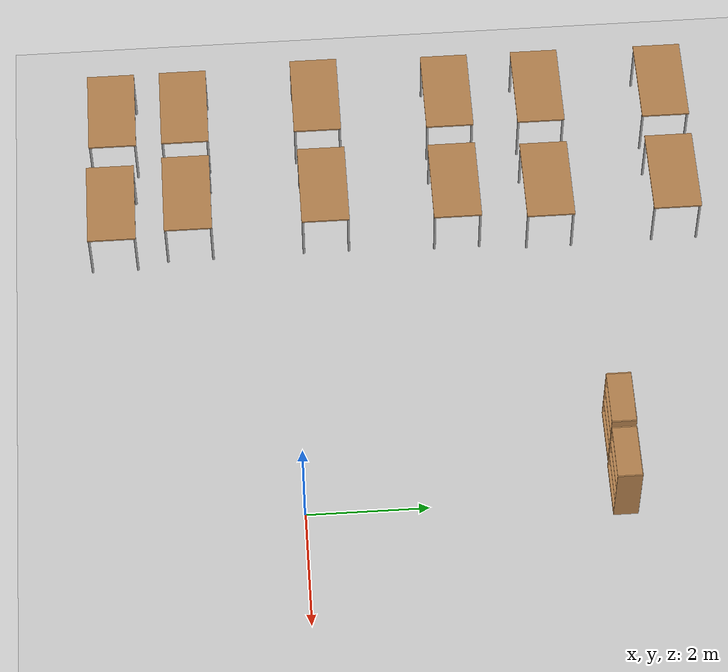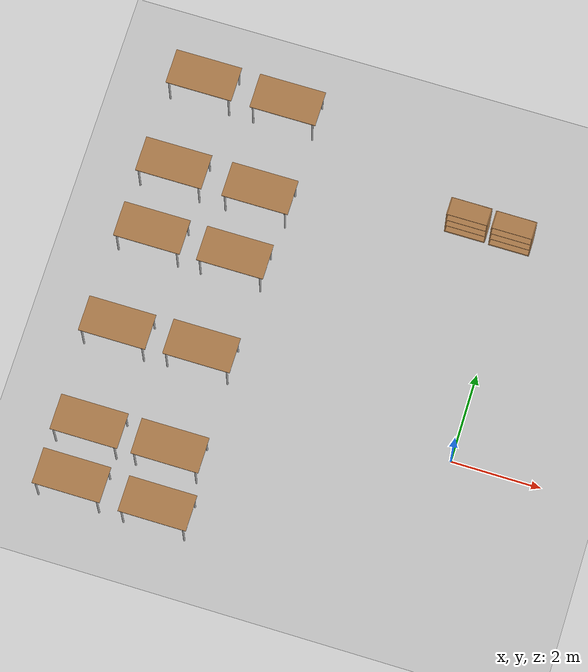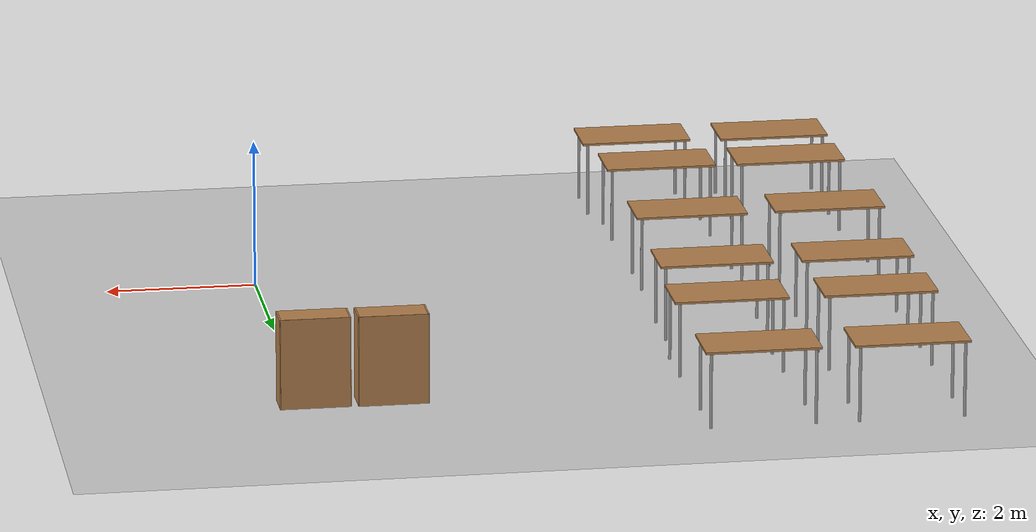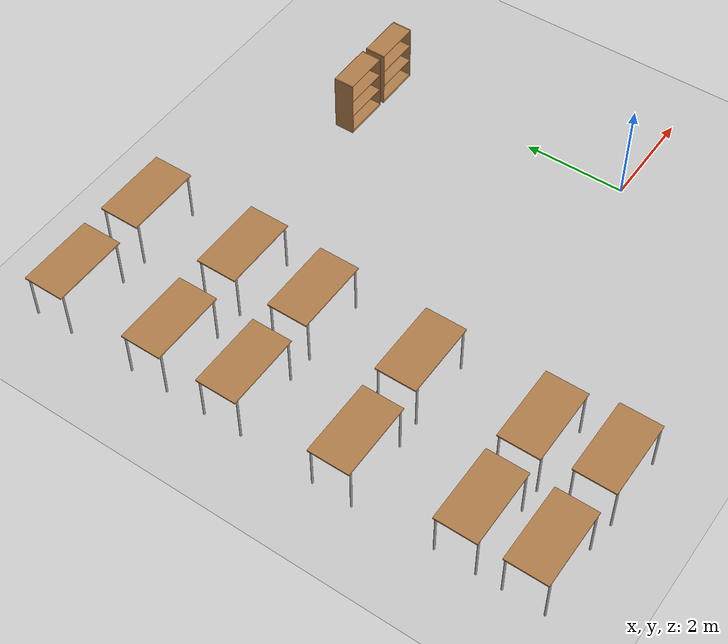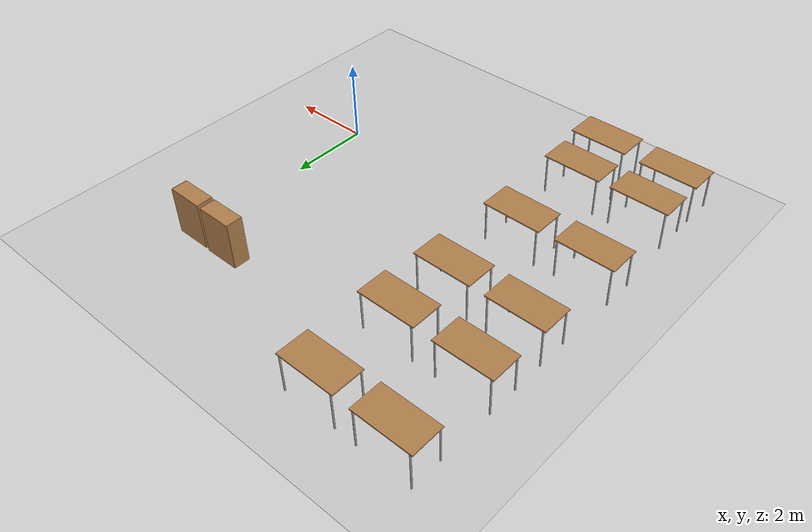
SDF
<sdf version="1.6">
 <world name="default">
  <model name="ground_plane">
   <static>1</static>
   <link name="link">
    <collision name="collision">
     <geometry><plane><normal>0 0 1</normal><size>100 100</size></plane></geometry>
     <surface>
      <contact><collide_bitmask>65535</collide_bitmask></contact>
      <friction><ode><mu>100</mu><mu2>50</mu2></ode></friction>
     </surface>
    </collision>
    <visual name="visual">
     <cast_shadows>0</cast_shadows>
     <geometry><plane><normal>0 0 1</normal><size>100 100</size></plane></geometry>
     <material>
      <script><uri>file://media/materials/scripts/gazebo.material</uri><name>Gazebo/Grey</name></script>
     </material>
    </visual>
   </link>
  </model>
  <model name="bookshelf">
   <static>1</static>
   <link name="link">
    <inertial><mass>1</mass></inertial>
    <collision name="back">
     <pose>0 0.005 0.6 0 -0 0</pose>
     <geometry><box><size>0.9 0.01 1.2</size></box></geometry>
    </collision>
    <visual name="visual1">
     <pose>0 0.005 0.6 0 -0 0</pose>
     <geometry><box><size>0.9 0.01 1.2</size></box></geometry>
     <material>
      <script><uri>file://media/materials/scripts/gazebo.material</uri><name>Gazebo/Wood</name></script>
     </material>
    </visual>
    <collision name="left_side">
     <pose>0.45 -0.195 0.6 0 -0 0</pose>
     <geometry><box><size>0.02 0.4 1.2</size></box></geometry>
    </collision>
    <visual name="visual2">
     <pose>0.45 -0.195 0.6 0 -0 0</pose>
     <geometry><box><size>0.02 0.4 1.2</size></box></geometry>
     <material>
      <script><uri>file://media/materials/scripts/gazebo.material</uri><name>Gazebo/Wood</name></script>
     </material>
    </visual>
    <collision name="right_side">
     <pose>-0.45 -0.195 0.6 0 -0 0</pose>
     <geometry><box><size>0.02 0.4 1.2</size></box></geometry>
    </collision>
    <visual name="visual3">
     <pose>-0.45 -0.195 0.6 0 -0 0</pose>
     <geometry><box><size>0.02 0.4 1.2</size></box></geometry>
     <material>
      <script><uri>file://media/materials/scripts/gazebo.material</uri><name>Gazebo/Wood</name></script>
     </material>
    </visual>
    <collision name="bottom">
     <pose>0 -0.195 0.03 0 -0 0</pose>
     <geometry><box><size>0.88 0.4 0.06</size></box></geometry>
    </collision>
    <visual name="visual4">
     <pose>0 -0.195 0.03 0 -0 0</pose>
     <geometry><box><size>0.88 0.4 0.06</size></box></geometry>
     <material>
      <script><uri>file://media/materials/scripts/gazebo.material</uri><name>Gazebo/Wood</name></script>
     </material>
    </visual>
    <collision name="top">
     <pose>0 -0.195 1.19 0 -0 0</pose>
     <geometry><box><size>0.88 0.4 0.02</size></box></geometry>
    </collision>
    <visual name="visual5">
     <pose>0 -0.195 1.19 0 -0 0</pose>
     <geometry><box><size>0.88 0.4 0.02</size></box></geometry>
     <material>
      <script><uri>file://media/materials/scripts/gazebo.material</uri><name>Gazebo/Wood</name></script>
     </material>
    </visual>
    <collision name="low_shelf">
     <pose>0 -0.195 0.43 0 -0 0</pose>
     <geometry><box><size>0.88 0.4 0.02</size></box></geometry>
    </collision>
    <visual name="visual6">
     <pose>0 -0.195 0.43 0 -0 0</pose>
     <geometry><box><size>0.88 0.4 0.02</size></box></geometry>
     <material>
      <script><uri>file://media/materials/scripts/gazebo.material</uri><name>Gazebo/Wood</name></script>
     </material>
    </visual>
    <collision name="high_shelf">
     <pose>0 -0.195 0.8 0 -0 0</pose>
     <geometry><box><size>0.88 0.4 0.02</size></box></geometry>
    </collision>
    <visual name="visual7">
     <pose>0 -0.195 0.8 0 -0 0</pose>
     <geometry><box><size>0.88 0.4 0.02</size></box></geometry>
     <material>
      <script><uri>file://media/materials/scripts/gazebo.material</uri><name>Gazebo/Wood</name></script>
     </material>
    </visual>
   </link>
   <pose>-1.13724 5.33278 0 0 -0 0</pose>
  </model>
  <model name="bookshelf_1">
   <static>1</static>
   <link name="link">
    <inertial><mass>1</mass></inertial>
    <collision name="back">
     <pose>0 0.005 0.6 0 -0 0</pose>
     <geometry><box><size>0.9 0.01 1.2</size></box></geometry>
    </collision>
    <visual name="visual1">
     <pose>0 0.005 0.6 0 -0 0</pose>
     <geometry><box><size>0.9 0.01 1.2</size></box></geometry>
     <material>
      <script><uri>file://media/materials/scripts/gazebo.material</uri><name>Gazebo/Wood</name></script>
     </material>
    </visual>
    <collision name="left_side">
     <pose>0.45 -0.195 0.6 0 -0 0</pose>
     <geometry><box><size>0.02 0.4 1.2</size></box></geometry>
    </collision>
    <visual name="visual2">
     <pose>0.45 -0.195 0.6 0 -0 0</pose>
     <geometry><box><size>0.02 0.4 1.2</size></box></geometry>
     <material>
      <script><uri>file://media/materials/scripts/gazebo.material</uri><name>Gazebo/Wood</name></script>
     </material>
    </visual>
    <collision name="right_side">
     <pose>-0.45 -0.195 0.6 0 -0 0</pose>
     <geometry><box><size>0.02 0.4 1.2</size></box></geometry>
    </collision>
    <visual name="visual3">
     <pose>-0.45 -0.195 0.6 0 -0 0</pose>
     <geometry><box><size>0.02 0.4 1.2</size></box></geometry>
     <material>
      <script><uri>file://media/materials/scripts/gazebo.material</uri><name>Gazebo/Wood</name></script>
     </material>
    </visual>
    <collision name="bottom">
     <pose>0 -0.195 0.03 0 -0 0</pose>
     <geometry><box><size>0.88 0.4 0.06</size></box></geometry>
    </collision>
    <visual name="visual4">
     <pose>0 -0.195 0.03 0 -0 0</pose>
     <geometry><box><size>0.88 0.4 0.06</size></box></geometry>
     <material>
      <script><uri>file://media/materials/scripts/gazebo.material</uri><name>Gazebo/Wood</name></script>
     </material>
    </visual>
    <collision name="top">
     <pose>0 -0.195 1.19 0 -0 0</pose>
     <geometry><box><size>0.88 0.4 0.02</size></box></geometry>
    </collision>
    <visual name="visual5">
     <pose>0 -0.195 1.19 0 -0 0</pose>
     <geometry><box><size>0.88 0.4 0.02</size></box></geometry>
     <material>
      <script><uri>file://media/materials/scripts/gazebo.material</uri><name>Gazebo/Wood</name></script>
     </material>
    </visual>
    <collision name="low_shelf">
     <pose>0 -0.195 0.43 0 -0 0</pose>
     <geometry><box><size>0.88 0.4 0.02</size></box></geometry>
    </collision>
    <visual name="visual6">
     <pose>0 -0.195 0.43 0 -0 0</pose>
     <geometry><box><size>0.88 0.4 0.02</size></box></geometry>
     <material>
      <script><uri>file://media/materials/scripts/gazebo.material</uri><name>Gazebo/Wood</name></script>
     </material>
    </visual>
    <collision name="high_shelf">
     <pose>0 -0.195 0.8 0 -0 0</pose>
     <geometry><box><size>0.88 0.4 0.02</size></box></geometry>
    </collision>
    <visual name="visual7">
     <pose>0 -0.195 0.8 0 -0 0</pose>
     <geometry><box><size>0.88 0.4 0.02</size></box></geometry>
     <material>
      <script><uri>file://media/materials/scripts/gazebo.material</uri><name>Gazebo/Wood</name></script>
     </material>
    </visual>
   </link>
   <pose>-0.129759 5.31814 0 0 -0 0</pose>
  </model>
  <model name="table">
   <static>1</static>
   <link name="link">
    <collision name="surface">
     <pose>0 0 1 0 -0 0</pose>
     <geometry><box><size>1.5 0.8 0.03</size></box></geometry>
     <surface><friction><ode><mu>0.6</mu><mu2>0.6</mu2></ode></friction></surface>
    </collision>
    <visual name="visual1">
     <pose>0 0 1 0 -0 0</pose>
     <geometry><box><size>1.5 0.8 0.03</size></box></geometry>
     <material>
      <script><uri>file://media/materials/scripts/gazebo.material</uri><name>Gazebo/Wood</name></script>
     </material>
    </visual>
    <collision name="front_left_leg">
     <pose>0.68 0.38 0.5 0 -0 0</pose>
     <geometry><cylinder><radius>0.02</radius><length>1</length></cylinder></geometry>
    </collision>
    <visual name="front_left_leg">
     <pose>0.68 0.38 0.5 0 -0 0</pose>
     <geometry><cylinder><radius>0.02</radius><length>1</length></cylinder></geometry>
     <material>
      <script><uri>file://media/materials/scripts/gazebo.material</uri><name>Gazebo/Grey</name></script>
     </material>
    </visual>
    <collision name="front_right_leg">
     <pose>0.68 -0.38 0.5 0 -0 0</pose>
     <geometry><cylinder><radius>0.02</radius><length>1</length></cylinder></geometry>
    </collision>
    <visual name="front_right_leg">
     <pose>0.68 -0.38 0.5 0 -0 0</pose>
     <geometry><cylinder><radius>0.02</radius><length>1</length></cylinder></geometry>
     <material>
      <script><uri>file://media/materials/scripts/gazebo.material</uri><name>Gazebo/Grey</name></script>
     </material>
    </visual>
    <collision name="back_right_leg">
     <pose>-0.68 -0.38 0.5 0 -0 0</pose>
     <geometry><cylinder><radius>0.02</radius><length>1</length></cylinder></geometry>
    </collision>
    <visual name="back_right_leg">
     <pose>-0.68 -0.38 0.5 0 -0 0</pose>
     <geometry><cylinder><radius>0.02</radius><length>1</length></cylinder></geometry>
     <material>
      <script><uri>file://media/materials/scripts/gazebo.material</uri><name>Gazebo/Grey</name></script>
     </material>
    </visual>
    <collision name="back_left_leg">
     <pose>-0.68 0.38 0.5 0 -0 0</pose>
     <geometry><cylinder><radius>0.02</radius><length>1</length></cylinder></geometry>
    </collision>
    <visual name="back_left_leg">
     <pose>-0.68 0.38 0.5 0 -0 0</pose>
     <geometry><cylinder><radius>0.02</radius><length>1</length></cylinder></geometry>
     <material>
      <script><uri>file://media/materials/scripts/gazebo.material</uri><name>Gazebo/Grey</name></script>
     </material>
    </visual>
   </link>
   <pose>-7.57494 6.51884 0 0 -0 0</pose>
  </model>
  <model name="table_0">
   <static>1</static>
   <link name="link">
    <collision name="surface">
     <pose>0 0 1 0 -0 0</pose>
     <geometry><box><size>1.5 0.8 0.03</size></box></geometry>
     <surface><friction><ode><mu>0.6</mu><mu2>0.6</mu2></ode></friction></surface>
    </collision>
    <visual name="visual1">
     <pose>0 0 1 0 -0 0</pose>
     <geometry><box><size>1.5 0.8 0.03</size></box></geometry>
     <material>
      <script><uri>file://media/materials/scripts/gazebo.material</uri><name>Gazebo/Wood</name></script>
     </material>
    </visual>
    <collision name="front_left_leg">
     <pose>0.68 0.38 0.5 0 -0 0</pose>
     <geometry><cylinder><radius>0.02</radius><length>1</length></cylinder></geometry>
    </collision>
    <visual name="front_left_leg">
     <pose>0.68 0.38 0.5 0 -0 0</pose>
     <geometry><cylinder><radius>0.02</radius><length>1</length></cylinder></geometry>
     <material>
      <script><uri>file://media/materials/scripts/gazebo.material</uri><name>Gazebo/Grey</name></script>
     </material>
    </visual>
    <collision name="front_right_leg">
     <pose>0.68 -0.38 0.5 0 -0 0</pose>
     <geometry><cylinder><radius>0.02</radius><length>1</length></cylinder></geometry>
    </collision>
    <visual name="front_right_leg">
     <pose>0.68 -0.38 0.5 0 -0 0</pose>
     <geometry><cylinder><radius>0.02</radius><length>1</length></cylinder></geometry>
     <material>
      <script><uri>file://media/materials/scripts/gazebo.material</uri><name>Gazebo/Grey</name></script>
     </material>
    </visual>
    <collision name="back_right_leg">
     <pose>-0.68 -0.38 0.5 0 -0 0</pose>
     <geometry><cylinder><radius>0.02</radius><length>1</length></cylinder></geometry>
    </collision>
    <visual name="back_right_leg">
     <pose>-0.68 -0.38 0.5 0 -0 0</pose>
     <geometry><cylinder><radius>0.02</radius><length>1</length></cylinder></geometry>
     <material>
      <script><uri>file://media/materials/scripts/gazebo.material</uri><name>Gazebo/Grey</name></script>
     </material>
    </visual>
    <collision name="back_left_leg">
     <pose>-0.68 0.38 0.5 0 -0 0</pose>
     <geometry><cylinder><radius>0.02</radius><length>1</length></cylinder></geometry>
    </collision>
    <visual name="back_left_leg">
     <pose>-0.68 0.38 0.5 0 -0 0</pose>
     <geometry><cylinder><radius>0.02</radius><length>1</length></cylinder></geometry>
     <material>
      <script><uri>file://media/materials/scripts/gazebo.material</uri><name>Gazebo/Grey</name></script>
     </material>
    </visual>
   </link>
   <pose>-5.65387 6.50866 0 0 -0 0</pose>
  </model>
  <model name="table_1">
   <static>1</static>
   <link name="link">
    <collision name="surface">
     <pose>0 0 1 0 -0 0</pose>
     <geometry><box><size>1.5 0.8 0.03</size></box></geometry>
     <surface><friction><ode><mu>0.6</mu><mu2>0.6</mu2></ode></friction></surface>
    </collision>
    <visual name="visual1">
     <pose>0 0 1 0 -0 0</pose>
     <geometry><box><size>1.5 0.8 0.03</size></box></geometry>
     <material>
      <script><uri>file://media/materials/scripts/gazebo.material</uri><name>Gazebo/Wood</name></script>
     </material>
    </visual>
    <collision name="front_left_leg">
     <pose>0.68 0.38 0.5 0 -0 0</pose>
     <geometry><cylinder><radius>0.02</radius><length>1</length></cylinder></geometry>
    </collision>
    <visual name="front_left_leg">
     <pose>0.68 0.38 0.5 0 -0 0</pose>
     <geometry><cylinder><radius>0.02</radius><length>1</length></cylinder></geometry>
     <material>
      <script><uri>file://media/materials/scripts/gazebo.material</uri><name>Gazebo/Grey</name></script>
     </material>
    </visual>
    <collision name="front_right_leg">
     <pose>0.68 -0.38 0.5 0 -0 0</pose>
     <geometry><cylinder><radius>0.02</radius><length>1</length></cylinder></geometry>
    </collision>
    <visual name="front_right_leg">
     <pose>0.68 -0.38 0.5 0 -0 0</pose>
     <geometry><cylinder><radius>0.02</radius><length>1</length></cylinder></geometry>
     <material>
      <script><uri>file://media/materials/scripts/gazebo.material</uri><name>Gazebo/Grey</name></script>
     </material>
    </visual>
    <collision name="back_right_leg">
     <pose>-0.68 -0.38 0.5 0 -0 0</pose>
     <geometry><cylinder><radius>0.02</radius><length>1</length></cylinder></geometry>
    </collision>
    <visual name="back_right_leg">
     <pose>-0.68 -0.38 0.5 0 -0 0</pose>
     <geometry><cylinder><radius>0.02</radius><length>1</length></cylinder></geometry>
     <material>
      <script><uri>file://media/materials/scripts/gazebo.material</uri><name>Gazebo/Grey</name></script>
     </material>
    </visual>
    <collision name="back_left_leg">
     <pose>-0.68 0.38 0.5 0 -0 0</pose>
     <geometry><cylinder><radius>0.02</radius><length>1</length></cylinder></geometry>
    </collision>
    <visual name="back_left_leg">
     <pose>-0.68 0.38 0.5 0 -0 0</pose>
     <geometry><cylinder><radius>0.02</radius><length>1</length></cylinder></geometry>
     <material>
      <script><uri>file://media/materials/scripts/gazebo.material</uri><name>Gazebo/Grey</name></script>
     </material>
    </visual>
   </link>
   <pose>-7.59028 4.39341 0 0 -0 0</pose>
  </model>
  <model name="table_2">
   <static>1</static>
   <link name="link">
    <collision name="surface">
     <pose>0 0 1 0 -0 0</pose>
     <geometry><box><size>1.5 0.8 0.03</size></box></geometry>
     <surface><friction><ode><mu>0.6</mu><mu2>0.6</mu2></ode></friction></surface>
    </collision>
    <visual name="visual1">
     <pose>0 0 1 0 -0 0</pose>
     <geometry><box><size>1.5 0.8 0.03</size></box></geometry>
     <material>
      <script><uri>file://media/materials/scripts/gazebo.material</uri><name>Gazebo/Wood</name></script>
     </material>
    </visual>
    <collision name="front_left_leg">
     <pose>0.68 0.38 0.5 0 -0 0</pose>
     <geometry><cylinder><radius>0.02</radius><length>1</length></cylinder></geometry>
    </collision>
    <visual name="front_left_leg">
     <pose>0.68 0.38 0.5 0 -0 0</pose>
     <geometry><cylinder><radius>0.02</radius><length>1</length></cylinder></geometry>
     <material>
      <script><uri>file://media/materials/scripts/gazebo.material</uri><name>Gazebo/Grey</name></script>
     </material>
    </visual>
    <collision name="front_right_leg">
     <pose>0.68 -0.38 0.5 0 -0 0</pose>
     <geometry><cylinder><radius>0.02</radius><length>1</length></cylinder></geometry>
    </collision>
    <visual name="front_right_leg">
     <pose>0.68 -0.38 0.5 0 -0 0</pose>
     <geometry><cylinder><radius>0.02</radius><length>1</length></cylinder></geometry>
     <material>
      <script><uri>file://media/materials/scripts/gazebo.material</uri><name>Gazebo/Grey</name></script>
     </material>
    </visual>
    <collision name="back_right_leg">
     <pose>-0.68 -0.38 0.5 0 -0 0</pose>
     <geometry><cylinder><radius>0.02</radius><length>1</length></cylinder></geometry>
    </collision>
    <visual name="back_right_leg">
     <pose>-0.68 -0.38 0.5 0 -0 0</pose>
     <geometry><cylinder><radius>0.02</radius><length>1</length></cylinder></geometry>
     <material>
      <script><uri>file://media/materials/scripts/gazebo.material</uri><name>Gazebo/Grey</name></script>
     </material>
    </visual>
    <collision name="back_left_leg">
     <pose>-0.68 0.38 0.5 0 -0 0</pose>
     <geometry><cylinder><radius>0.02</radius><length>1</length></cylinder></geometry>
    </collision>
    <visual name="back_left_leg">
     <pose>-0.68 0.38 0.5 0 -0 0</pose>
     <geometry><cylinder><radius>0.02</radius><length>1</length></cylinder></geometry>
     <material>
      <script><uri>file://media/materials/scripts/gazebo.material</uri><name>Gazebo/Grey</name></script>
     </material>
    </visual>
   </link>
   <pose>-5.62845 4.382 0 0 -0 0</pose>
  </model>
  <model name="table_3">
   <static>1</static>
   <link name="link">
    <collision name="surface">
     <pose>0 0 1 0 -0 0</pose>
     <geometry><box><size>1.5 0.8 0.03</size></box></geometry>
     <surface><friction><ode><mu>0.6</mu><mu2>0.6</mu2></ode></friction></surface>
    </collision>
    <visual name="visual1">
     <pose>0 0 1 0 -0 0</pose>
     <geometry><box><size>1.5 0.8 0.03</size></box></geometry>
     <material>
      <script><uri>file://media/materials/scripts/gazebo.material</uri><name>Gazebo/Wood</name></script>
     </material>
    </visual>
    <collision name="front_left_leg">
     <pose>0.68 0.38 0.5 0 -0 0</pose>
     <geometry><cylinder><radius>0.02</radius><length>1</length></cylinder></geometry>
    </collision>
    <visual name="front_left_leg">
     <pose>0.68 0.38 0.5 0 -0 0</pose>
     <geometry><cylinder><radius>0.02</radius><length>1</length></cylinder></geometry>
     <material>
      <script><uri>file://media/materials/scripts/gazebo.material</uri><name>Gazebo/Grey</name></script>
     </material>
    </visual>
    <collision name="front_right_leg">
     <pose>0.68 -0.38 0.5 0 -0 0</pose>
     <geometry><cylinder><radius>0.02</radius><length>1</length></cylinder></geometry>
    </collision>
    <visual name="front_right_leg">
     <pose>0.68 -0.38 0.5 0 -0 0</pose>
     <geometry><cylinder><radius>0.02</radius><length>1</length></cylinder></geometry>
     <material>
      <script><uri>file://media/materials/scripts/gazebo.material</uri><name>Gazebo/Grey</name></script>
     </material>
    </visual>
    <collision name="back_right_leg">
     <pose>-0.68 -0.38 0.5 0 -0 0</pose>
     <geometry><cylinder><radius>0.02</radius><length>1</length></cylinder></geometry>
    </collision>
    <visual name="back_right_leg">
     <pose>-0.68 -0.38 0.5 0 -0 0</pose>
     <geometry><cylinder><radius>0.02</radius><length>1</length></cylinder></geometry>
     <material>
      <script><uri>file://media/materials/scripts/gazebo.material</uri><name>Gazebo/Grey</name></script>
     </material>
    </visual>
    <collision name="back_left_leg">
     <pose>-0.68 0.38 0.5 0 -0 0</pose>
     <geometry><cylinder><radius>0.02</radius><length>1</length></cylinder></geometry>
    </collision>
    <visual name="back_left_leg">
     <pose>-0.68 0.38 0.5 0 -0 0</pose>
     <geometry><cylinder><radius>0.02</radius><length>1</length></cylinder></geometry>
     <material>
      <script><uri>file://media/materials/scripts/gazebo.material</uri><name>Gazebo/Grey</name></script>
     </material>
    </visual>
   </link>
   <pose>-7.59009 2.84002 0 0 -0 0</pose>
  </model>
  <model name="table_4">
   <static>1</static>
   <link name="link">
    <collision name="surface">
     <pose>0 0 1 0 -0 0</pose>
     <geometry><box><size>1.5 0.8 0.03</size></box></geometry>
     <surface><friction><ode><mu>0.6</mu><mu2>0.6</mu2></ode></friction></surface>
    </collision>
    <visual name="visual1">
     <pose>0 0 1 0 -0 0</pose>
     <geometry><box><size>1.5 0.8 0.03</size></box></geometry>
     <material>
      <script><uri>file://media/materials/scripts/gazebo.material</uri><name>Gazebo/Wood</name></script>
     </material>
    </visual>
    <collision name="front_left_leg">
     <pose>0.68 0.38 0.5 0 -0 0</pose>
     <geometry><cylinder><radius>0.02</radius><length>1</length></cylinder></geometry>
    </collision>
    <visual name="front_left_leg">
     <pose>0.68 0.38 0.5 0 -0 0</pose>
     <geometry><cylinder><radius>0.02</radius><length>1</length></cylinder></geometry>
     <material>
      <script><uri>file://media/materials/scripts/gazebo.material</uri><name>Gazebo/Grey</name></script>
     </material>
    </visual>
    <collision name="front_right_leg">
     <pose>0.68 -0.38 0.5 0 -0 0</pose>
     <geometry><cylinder><radius>0.02</radius><length>1</length></cylinder></geometry>
    </collision>
    <visual name="front_right_leg">
     <pose>0.68 -0.38 0.5 0 -0 0</pose>
     <geometry><cylinder><radius>0.02</radius><length>1</length></cylinder></geometry>
     <material>
      <script><uri>file://media/materials/scripts/gazebo.material</uri><name>Gazebo/Grey</name></script>
     </material>
    </visual>
    <collision name="back_right_leg">
     <pose>-0.68 -0.38 0.5 0 -0 0</pose>
     <geometry><cylinder><radius>0.02</radius><length>1</length></cylinder></geometry>
    </collision>
    <visual name="back_right_leg">
     <pose>-0.68 -0.38 0.5 0 -0 0</pose>
     <geometry><cylinder><radius>0.02</radius><length>1</length></cylinder></geometry>
     <material>
      <script><uri>file://media/materials/scripts/gazebo.material</uri><name>Gazebo/Grey</name></script>
     </material>
    </visual>
    <collision name="back_left_leg">
     <pose>-0.68 0.38 0.5 0 -0 0</pose>
     <geometry><cylinder><radius>0.02</radius><length>1</length></cylinder></geometry>
    </collision>
    <visual name="back_left_leg">
     <pose>-0.68 0.38 0.5 0 -0 0</pose>
     <geometry><cylinder><radius>0.02</radius><length>1</length></cylinder></geometry>
     <material>
      <script><uri>file://media/materials/scripts/gazebo.material</uri><name>Gazebo/Grey</name></script>
     </material>
    </visual>
   </link>
   <pose>-5.71003 2.83079 0 0 -0 0</pose>
  </model>
  <model name="table_5">
   <static>1</static>
   <link name="link">
    <collision name="surface">
     <pose>0 0 1 0 -0 0</pose>
     <geometry><box><size>1.5 0.8 0.03</size></box></geometry>
     <surface><friction><ode><mu>0.6</mu><mu2>0.6</mu2></ode></friction></surface>
    </collision>
    <visual name="visual1">
     <pose>0 0 1 0 -0 0</pose>
     <geometry><box><size>1.5 0.8 0.03</size></box></geometry>
     <material>
      <script><uri>file://media/materials/scripts/gazebo.material</uri><name>Gazebo/Wood</name></script>
     </material>
    </visual>
    <collision name="front_left_leg">
     <pose>0.68 0.38 0.5 0 -0 0</pose>
     <geometry><cylinder><radius>0.02</radius><length>1</length></cylinder></geometry>
    </collision>
    <visual name="front_left_leg">
     <pose>0.68 0.38 0.5 0 -0 0</pose>
     <geometry><cylinder><radius>0.02</radius><length>1</length></cylinder></geometry>
     <material>
      <script><uri>file://media/materials/scripts/gazebo.material</uri><name>Gazebo/Grey</name></script>
     </material>
    </visual>
    <collision name="front_right_leg">
     <pose>0.68 -0.38 0.5 0 -0 0</pose>
     <geometry><cylinder><radius>0.02</radius><length>1</length></cylinder></geometry>
    </collision>
    <visual name="front_right_leg">
     <pose>0.68 -0.38 0.5 0 -0 0</pose>
     <geometry><cylinder><radius>0.02</radius><length>1</length></cylinder></geometry>
     <material>
      <script><uri>file://media/materials/scripts/gazebo.material</uri><name>Gazebo/Grey</name></script>
     </material>
    </visual>
    <collision name="back_right_leg">
     <pose>-0.68 -0.38 0.5 0 -0 0</pose>
     <geometry><cylinder><radius>0.02</radius><length>1</length></cylinder></geometry>
    </collision>
    <visual name="back_right_leg">
     <pose>-0.68 -0.38 0.5 0 -0 0</pose>
     <geometry><cylinder><radius>0.02</radius><length>1</length></cylinder></geometry>
     <material>
      <script><uri>file://media/materials/scripts/gazebo.material</uri><name>Gazebo/Grey</name></script>
     </material>
    </visual>
    <collision name="back_left_leg">
     <pose>-0.68 0.38 0.5 0 -0 0</pose>
     <geometry><cylinder><radius>0.02</radius><length>1</length></cylinder></geometry>
    </collision>
    <visual name="back_left_leg">
     <pose>-0.68 0.38 0.5 0 -0 0</pose>
     <geometry><cylinder><radius>0.02</radius><length>1</length></cylinder></geometry>
     <material>
      <script><uri>file://media/materials/scripts/gazebo.material</uri><name>Gazebo/Grey</name></script>
     </material>
    </visual>
   </link>
   <pose>-7.64919 0.593495 0 0 -0 0</pose>
  </model>
  <model name="table_6">
   <static>1</static>
   <link name="link">
    <collision name="surface">
     <pose>0 0 1 0 -0 0</pose>
     <geometry><box><size>1.5 0.8 0.03</size></box></geometry>
     <surface><friction><ode><mu>0.6</mu><mu2>0.6</mu2></ode></friction></surface>
    </collision>
    <visual name="visual1">
     <pose>0 0 1 0 -0 0</pose>
     <geometry><box><size>1.5 0.8 0.03</size></box></geometry>
     <material>
      <script><uri>file://media/materials/scripts/gazebo.material</uri><name>Gazebo/Wood</name></script>
     </material>
    </visual>
    <collision name="front_left_leg">
     <pose>0.68 0.38 0.5 0 -0 0</pose>
     <geometry><cylinder><radius>0.02</radius><length>1</length></cylinder></geometry>
    </collision>
    <visual name="front_left_leg">
     <pose>0.68 0.38 0.5 0 -0 0</pose>
     <geometry><cylinder><radius>0.02</radius><length>1</length></cylinder></geometry>
     <material>
      <script><uri>file://media/materials/scripts/gazebo.material</uri><name>Gazebo/Grey</name></script>
     </material>
    </visual>
    <collision name="front_right_leg">
     <pose>0.68 -0.38 0.5 0 -0 0</pose>
     <geometry><cylinder><radius>0.02</radius><length>1</length></cylinder></geometry>
    </collision>
    <visual name="front_right_leg">
     <pose>0.68 -0.38 0.5 0 -0 0</pose>
     <geometry><cylinder><radius>0.02</radius><length>1</length></cylinder></geometry>
     <material>
      <script><uri>file://media/materials/scripts/gazebo.material</uri><name>Gazebo/Grey</name></script>
     </material>
    </visual>
    <collision name="back_right_leg">
     <pose>-0.68 -0.38 0.5 0 -0 0</pose>
     <geometry><cylinder><radius>0.02</radius><length>1</length></cylinder></geometry>
    </collision>
    <visual name="back_right_leg">
     <pose>-0.68 -0.38 0.5 0 -0 0</pose>
     <geometry><cylinder><radius>0.02</radius><length>1</length></cylinder></geometry>
     <material>
      <script><uri>file://media/materials/scripts/gazebo.material</uri><name>Gazebo/Grey</name></script>
     </material>
    </visual>
    <collision name="back_left_leg">
     <pose>-0.68 0.38 0.5 0 -0 0</pose>
     <geometry><cylinder><radius>0.02</radius><length>1</length></cylinder></geometry>
    </collision>
    <visual name="back_left_leg">
     <pose>-0.68 0.38 0.5 0 -0 0</pose>
     <geometry><cylinder><radius>0.02</radius><length>1</length></cylinder></geometry>
     <material>
      <script><uri>file://media/materials/scripts/gazebo.material</uri><name>Gazebo/Grey</name></script>
     </material>
    </visual>
   </link>
   <pose>-5.76818 0.625273 0 0 -0 0</pose>
  </model>
  <model name="table_7">
   <static>1</static>
   <link name="link">
    <collision name="surface">
     <pose>0 0 1 0 -0 0</pose>
     <geometry><box><size>1.5 0.8 0.03</size></box></geometry>
     <surface><friction><ode><mu>0.6</mu><mu2>0.6</mu2></ode></friction></surface>
    </collision>
    <visual name="visual1">
     <pose>0 0 1 0 -0 0</pose>
     <geometry><box><size>1.5 0.8 0.03</size></box></geometry>
     <material>
      <script><uri>file://media/materials/scripts/gazebo.material</uri><name>Gazebo/Wood</name></script>
     </material>
    </visual>
    <collision name="front_left_leg">
     <pose>0.68 0.38 0.5 0 -0 0</pose>
     <geometry><cylinder><radius>0.02</radius><length>1</length></cylinder></geometry>
    </collision>
    <visual name="front_left_leg">
     <pose>0.68 0.38 0.5 0 -0 0</pose>
     <geometry><cylinder><radius>0.02</radius><length>1</length></cylinder></geometry>
     <material>
      <script><uri>file://media/materials/scripts/gazebo.material</uri><name>Gazebo/Grey</name></script>
     </material>
    </visual>
    <collision name="front_right_leg">
     <pose>0.68 -0.38 0.5 0 -0 0</pose>
     <geometry><cylinder><radius>0.02</radius><length>1</length></cylinder></geometry>
    </collision>
    <visual name="front_right_leg">
     <pose>0.68 -0.38 0.5 0 -0 0</pose>
     <geometry><cylinder><radius>0.02</radius><length>1</length></cylinder></geometry>
     <material>
      <script><uri>file://media/materials/scripts/gazebo.material</uri><name>Gazebo/Grey</name></script>
     </material>
    </visual>
    <collision name="back_right_leg">
     <pose>-0.68 -0.38 0.5 0 -0 0</pose>
     <geometry><cylinder><radius>0.02</radius><length>1</length></cylinder></geometry>
    </collision>
    <visual name="back_right_leg">
     <pose>-0.68 -0.38 0.5 0 -0 0</pose>
     <geometry><cylinder><radius>0.02</radius><length>1</length></cylinder></geometry>
     <material>
      <script><uri>file://media/materials/scripts/gazebo.material</uri><name>Gazebo/Grey</name></script>
     </material>
    </visual>
    <collision name="back_left_leg">
     <pose>-0.68 0.38 0.5 0 -0 0</pose>
     <geometry><cylinder><radius>0.02</radius><length>1</length></cylinder></geometry>
    </collision>
    <visual name="back_left_leg">
     <pose>-0.68 0.38 0.5 0 -0 0</pose>
     <geometry><cylinder><radius>0.02</radius><length>1</length></cylinder></geometry>
     <material>
      <script><uri>file://media/materials/scripts/gazebo.material</uri><name>Gazebo/Grey</name></script>
     </material>
    </visual>
   </link>
   <pose>-7.5452 -1.65694 0 0 -0 0</pose>
  </model>
  <model name="table_8">
   <static>1</static>
   <link name="link">
    <collision name="surface">
     <pose>0 0 1 0 -0 0</pose>
     <geometry><box><size>1.5 0.8 0.03</size></box></geometry>
     <surface><friction><ode><mu>0.6</mu><mu2>0.6</mu2></ode></friction></surface>
    </collision>
    <visual name="visual1">
     <pose>0 0 1 0 -0 0</pose>
     <geometry><box><size>1.5 0.8 0.03</size></box></geometry>
     <material>
      <script><uri>file://media/materials/scripts/gazebo.material</uri><name>Gazebo/Wood</name></script>
     </material>
    </visual>
    <collision name="front_left_leg">
     <pose>0.68 0.38 0.5 0 -0 0</pose>
     <geometry><cylinder><radius>0.02</radius><length>1</length></cylinder></geometry>
    </collision>
    <visual name="front_left_leg">
     <pose>0.68 0.38 0.5 0 -0 0</pose>
     <geometry><cylinder><radius>0.02</radius><length>1</length></cylinder></geometry>
     <material>
      <script><uri>file://media/materials/scripts/gazebo.material</uri><name>Gazebo/Grey</name></script>
     </material>
    </visual>
    <collision name="front_right_leg">
     <pose>0.68 -0.38 0.5 0 -0 0</pose>
     <geometry><cylinder><radius>0.02</radius><length>1</length></cylinder></geometry>
    </collision>
    <visual name="front_right_leg">
     <pose>0.68 -0.38 0.5 0 -0 0</pose>
     <geometry><cylinder><radius>0.02</radius><length>1</length></cylinder></geometry>
     <material>
      <script><uri>file://media/materials/scripts/gazebo.material</uri><name>Gazebo/Grey</name></script>
     </material>
    </visual>
    <collision name="back_right_leg">
     <pose>-0.68 -0.38 0.5 0 -0 0</pose>
     <geometry><cylinder><radius>0.02</radius><length>1</length></cylinder></geometry>
    </collision>
    <visual name="back_right_leg">
     <pose>-0.68 -0.38 0.5 0 -0 0</pose>
     <geometry><cylinder><radius>0.02</radius><length>1</length></cylinder></geometry>
     <material>
      <script><uri>file://media/materials/scripts/gazebo.material</uri><name>Gazebo/Grey</name></script>
     </material>
    </visual>
    <collision name="back_left_leg">
     <pose>-0.68 0.38 0.5 0 -0 0</pose>
     <geometry><cylinder><radius>0.02</radius><length>1</length></cylinder></geometry>
    </collision>
    <visual name="back_left_leg">
     <pose>-0.68 0.38 0.5 0 -0 0</pose>
     <geometry><cylinder><radius>0.02</radius><length>1</length></cylinder></geometry>
     <material>
      <script><uri>file://media/materials/scripts/gazebo.material</uri><name>Gazebo/Grey</name></script>
     </material>
    </visual>
   </link>
   <pose>-5.74711 -1.6639 0 0 -0 0</pose>
  </model>
  <model name="table_9">
   <static>1</static>
   <link name="link">
    <collision name="surface">
     <pose>0 0 1 0 -0 0</pose>
     <geometry><box><size>1.5 0.8 0.03</size></box></geometry>
     <surface><friction><ode><mu>0.6</mu><mu2>0.6</mu2></ode></friction></surface>
    </collision>
    <visual name="visual1">
     <pose>0 0 1 0 -0 0</pose>
     <geometry><box><size>1.5 0.8 0.03</size></box></geometry>
     <material>
      <script><uri>file://media/materials/scripts/gazebo.material</uri><name>Gazebo/Wood</name></script>
     </material>
    </visual>
    <collision name="front_left_leg">
     <pose>0.68 0.38 0.5 0 -0 0</pose>
     <geometry><cylinder><radius>0.02</radius><length>1</length></cylinder></geometry>
    </collision>
    <visual name="front_left_leg">
     <pose>0.68 0.38 0.5 0 -0 0</pose>
     <geometry><cylinder><radius>0.02</radius><length>1</length></cylinder></geometry>
     <material>
      <script><uri>file://media/materials/scripts/gazebo.material</uri><name>Gazebo/Grey</name></script>
     </material>
    </visual>
    <collision name="front_right_leg">
     <pose>0.68 -0.38 0.5 0 -0 0</pose>
     <geometry><cylinder><radius>0.02</radius><length>1</length></cylinder></geometry>
    </collision>
    <visual name="front_right_leg">
     <pose>0.68 -0.38 0.5 0 -0 0</pose>
     <geometry><cylinder><radius>0.02</radius><length>1</length></cylinder></geometry>
     <material>
      <script><uri>file://media/materials/scripts/gazebo.material</uri><name>Gazebo/Grey</name></script>
     </material>
    </visual>
    <collision name="back_right_leg">
     <pose>-0.68 -0.38 0.5 0 -0 0</pose>
     <geometry><cylinder><radius>0.02</radius><length>1</length></cylinder></geometry>
    </collision>
    <visual name="back_right_leg">
     <pose>-0.68 -0.38 0.5 0 -0 0</pose>
     <geometry><cylinder><radius>0.02</radius><length>1</length></cylinder></geometry>
     <material>
      <script><uri>file://media/materials/scripts/gazebo.material</uri><name>Gazebo/Grey</name></script>
     </material>
    </visual>
    <collision name="back_left_leg">
     <pose>-0.68 0.38 0.5 0 -0 0</pose>
     <geometry><cylinder><radius>0.02</radius><length>1</length></cylinder></geometry>
    </collision>
    <visual name="back_left_leg">
     <pose>-0.68 0.38 0.5 0 -0 0</pose>
     <geometry><cylinder><radius>0.02</radius><length>1</length></cylinder></geometry>
     <material>
      <script><uri>file://media/materials/scripts/gazebo.material</uri><name>Gazebo/Grey</name></script>
     </material>
    </visual>
   </link>
   <pose>-7.53702 -2.88335 0 0 -0 0</pose>
  </model>
  <model name="table_10">
   <static>1</static>
   <link name="link">
    <collision name="surface">
     <pose>0 0 1 0 -0 0</pose>
     <geometry><box><size>1.5 0.8 0.03</size></box></geometry>
     <surface><friction><ode><mu>0.6</mu><mu2>0.6</mu2></ode></friction></surface>
    </collision>
    <visual name="visual1">
     <pose>0 0 1 0 -0 0</pose>
     <geometry><box><size>1.5 0.8 0.03</size></box></geometry>
     <material>
      <script><uri>file://media/materials/scripts/gazebo.material</uri><name>Gazebo/Wood</name></script>
     </material>
    </visual>
    <collision name="front_left_leg">
     <pose>0.68 0.38 0.5 0 -0 0</pose>
     <geometry><cylinder><radius>0.02</radius><length>1</length></cylinder></geometry>
    </collision>
    <visual name="front_left_leg">
     <pose>0.68 0.38 0.5 0 -0 0</pose>
     <geometry><cylinder><radius>0.02</radius><length>1</length></cylinder></geometry>
     <material>
      <script><uri>file://media/materials/scripts/gazebo.material</uri><name>Gazebo/Grey</name></script>
     </material>
    </visual>
    <collision name="front_right_leg">
     <pose>0.68 -0.38 0.5 0 -0 0</pose>
     <geometry><cylinder><radius>0.02</radius><length>1</length></cylinder></geometry>
    </collision>
    <visual name="front_right_leg">
     <pose>0.68 -0.38 0.5 0 -0 0</pose>
     <geometry><cylinder><radius>0.02</radius><length>1</length></cylinder></geometry>
     <material>
      <script><uri>file://media/materials/scripts/gazebo.material</uri><name>Gazebo/Grey</name></script>
     </material>
    </visual>
    <collision name="back_right_leg">
     <pose>-0.68 -0.38 0.5 0 -0 0</pose>
     <geometry><cylinder><radius>0.02</radius><length>1</length></cylinder></geometry>
    </collision>
    <visual name="back_right_leg">
     <pose>-0.68 -0.38 0.5 0 -0 0</pose>
     <geometry><cylinder><radius>0.02</radius><length>1</length></cylinder></geometry>
     <material>
      <script><uri>file://media/materials/scripts/gazebo.material</uri><name>Gazebo/Grey</name></script>
     </material>
    </visual>
    <collision name="back_left_leg">
     <pose>-0.68 0.38 0.5 0 -0 0</pose>
     <geometry><cylinder><radius>0.02</radius><length>1</length></cylinder></geometry>
    </collision>
    <visual name="back_left_leg">
     <pose>-0.68 0.38 0.5 0 -0 0</pose>
     <geometry><cylinder><radius>0.02</radius><length>1</length></cylinder></geometry>
     <material>
      <script><uri>file://media/materials/scripts/gazebo.material</uri><name>Gazebo/Grey</name></script>
     </material>
    </visual>
   </link>
   <pose>-5.61743 -2.93437 0 0 -0 0</pose>
  </model>
 </world>
</sdf>
